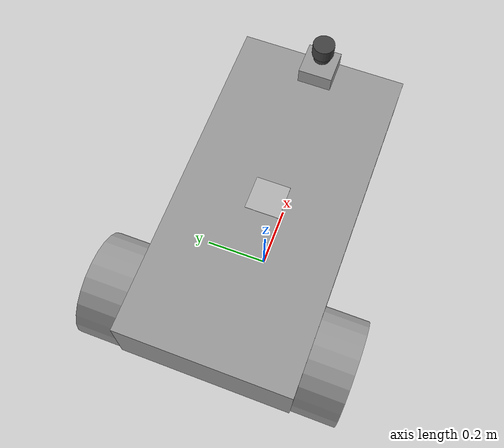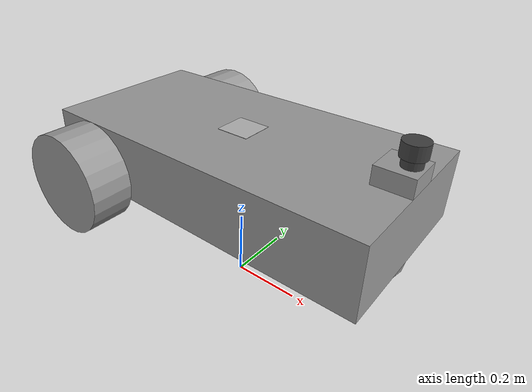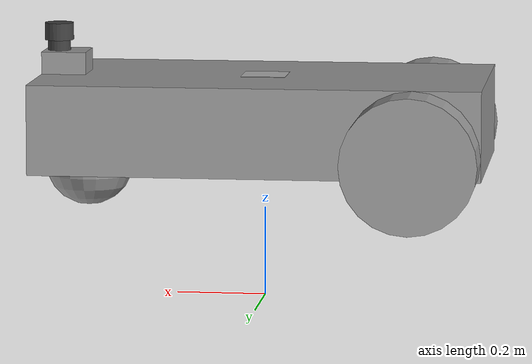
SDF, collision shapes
<?xml version='1.0'?>
<sdf version='1.7'>
  <model name='diff_drive_vehicle'>
    <link name='base_link'>
      <inertial>
        <mass>5</mass>
        <inertia>
          <ixx>0.120833</ixx>
          <ixy>0</ixy>
          <ixz>0</ixz>
          <iyy>0.433333</iyy>
          <iyz>0</iyz>
          <izz>0.520833</izz>
        </inertia>
        <pose>0 0 0 0 -0 0</pose>
      </inertial>
      <self_collide>0</self_collide>
      <enable_wind>0</enable_wind>
      <kinematic>0</kinematic>
      <pose>0 0 0.4 0 -0 0</pose>
      <gravity>1</gravity>
      <visual name='visual'>
        <geometry>
          <box>
            <size>1 0.5 0.2</size>
          </box>
        </geometry>
        <material>
          <script>
            <uri>file://media/materials/scripts/gazebo.material</uri>
            <name>Gazebo/Grey</name>
          </script>
          <shader type='pixel'>
            <normal_map>__default__</normal_map>
          </shader>
          <ambient>0.3 0.3 0.3 1</ambient>
          <diffuse>0.7 0.7 0.7 1</diffuse>
          <specular>0.01 0.01 0.01 1</specular>
          <emissive>0 0 0 1</emissive>
        </material>
        <pose>0 0 0 0 -0 0</pose>
        <transparency>0</transparency>
        <cast_shadows>1</cast_shadows>
      </visual>
      <collision name='collision'>
        <laser_retro>0</laser_retro>
        <max_contacts>10</max_contacts>
        <pose>0 0 0 0 -0 0</pose>
        <geometry>
          <box>
            <size>1 0.5 0.2</size>
          </box>
        </geometry>
        <surface>
          <friction>
            <ode>
              <mu>1</mu>
              <mu2>1</mu2>
              <fdir1>0 0 0</fdir1>
              <slip1>0</slip1>
              <slip2>0</slip2>
            </ode>
            <torsional>
              <coefficient>1</coefficient>
              <patch_radius>0</patch_radius>
              <surface_radius>0</surface_radius>
              <use_patch_radius>1</use_patch_radius>
              <ode>
                <slip>0</slip>
              </ode>
            </torsional>
          </friction>
          <bounce>
            <restitution_coefficient>0</restitution_coefficient>
            <threshold>1e+06</threshold>
          </bounce>
          <contact>
            <collide_without_contact>0</collide_without_contact>
            <collide_without_contact_bitmask>1</collide_without_contact_bitmask>
            <collide_bitmask>1</collide_bitmask>
            <ode>
              <soft_cfm>0</soft_cfm>
              <soft_erp>0.2</soft_erp>
              <kp>1e+13</kp>
              <kd>1</kd>
              <max_vel>0.01</max_vel>
              <min_depth>0</min_depth>
            </ode>
            <bullet>
              <split_impulse>1</split_impulse>
              <split_impulse_penetration_threshold>-0.01</split_impulse_penetration_threshold>
              <soft_cfm>0</soft_cfm>
              <soft_erp>0.2</soft_erp>
              <kp>1e+13</kp>
              <kd>1</kd>
            </bullet>
          </contact>
        </surface>
      </collision>
    </link>
    <link name='castor_wheel'>
      <inertial>
        <mass>0.1</mass>
        <inertia>
          <ixx>0.0004</ixx>
          <ixy>0.0004</ixy>
          <ixz>0.0004</ixz>
          <iyy>0.0004</iyy>
          <iyz>0.0004</iyz>
          <izz>0.0004</izz>
        </inertia>
        <pose>0 0 0 0 -0 0</pose>
      </inertial>
      <pose>0.4 0 0.3 0 -0 0</pose>
      <gravity>1</gravity>
      <self_collide>0</self_collide>
      <kinematic>0</kinematic>
      <enable_wind>0</enable_wind>
      <visual name='visual'>
        <pose>0 0 0 0 -0 0</pose>
        <geometry>
          <sphere>
            <radius>0.1</radius>
          </sphere>
        </geometry>
        <material>
          <lighting>1</lighting>
          <script>
            <uri>file://media/materials/scripts/gazebo.material</uri>
            <name>Gazebo/Grey</name>
          </script>
          <shader type='pixel'>
            <normal_map>__default__</normal_map>
          </shader>
          <ambient>0.3 0.3 0.3 1</ambient>
          <diffuse>0.7 0.7 0.7 1</diffuse>
          <specular>0.01 0.01 0.01 1</specular>
          <emissive>0 0 0 1</emissive>
        </material>
        <transparency>0</transparency>
        <cast_shadows>1</cast_shadows>
      </visual>
      <collision name='collision'>
        <laser_retro>0</laser_retro>
        <max_contacts>10</max_contacts>
        <pose>0 0 0 0 -0 0</pose>
        <geometry>
          <sphere>
            <radius>0.1</radius>
          </sphere>
        </geometry>
        <surface>
          <friction>
            <ode>
              <mu>1</mu>
              <mu2>1</mu2>
              <fdir1>0 0 0</fdir1>
              <slip1>0</slip1>
              <slip2>0</slip2>
            </ode>
            <torsional>
              <coefficient>1</coefficient>
              <patch_radius>0</patch_radius>
              <surface_radius>0</surface_radius>
              <use_patch_radius>1</use_patch_radius>
              <ode>
                <slip>0</slip>
              </ode>
            </torsional>
          </friction>
          <bounce>
            <restitution_coefficient>0</restitution_coefficient>
            <threshold>1e+06</threshold>
          </bounce>
          <contact>
            <collide_without_contact>0</collide_without_contact>
            <collide_without_contact_bitmask>1</collide_without_contact_bitmask>
            <collide_bitmask>1</collide_bitmask>
            <ode>
              <soft_cfm>0</soft_cfm>
              <soft_erp>0.2</soft_erp>
              <kp>1e+13</kp>
              <kd>1</kd>
              <max_vel>0.01</max_vel>
              <min_depth>0</min_depth>
            </ode>
            <bullet>
              <split_impulse>1</split_impulse>
              <split_impulse_penetration_threshold>-0.01</split_impulse_penetration_threshold>
              <soft_cfm>0</soft_cfm>
              <soft_erp>0.2</soft_erp>
              <kp>1e+13</kp>
              <kd>1</kd>
            </bullet>
          </contact>
        </surface>
      </collision>
    </link>
    <link name='left_wheel'>
      <inertial>
        <mass>0.25</mass>
        <inertia>
          <ixx>0.0017318</ixx>
          <ixy>0</ixy>
          <ixz>0</ixz>
          <iyy>0.0017318</iyy>
          <iyz>0</iyz>
          <izz>0.0028125</izz>
        </inertia>
        <pose>0 0 0 0 -0 0</pose>
      </inertial>
      <pose>-0.35 0.312514 0.349999 -1.5707 0 0</pose>
      <gravity>1</gravity>
      <self_collide>0</self_collide>
      <kinematic>0</kinematic>
      <enable_wind>0</enable_wind>
      <visual name='visual'>
        <pose>0 0 0 0 -0 0</pose>
        <geometry>
          <cylinder>
            <radius>0.15</radius>
            <length>0.125</length>
          </cylinder>
        </geometry>
        <material>
          <lighting>1</lighting>
          <script>
            <uri>file://media/materials/scripts/gazebo.material</uri>
            <name>Gazebo/Grey</name>
          </script>
          <shader type='pixel'>
            <normal_map>__default__</normal_map>
          </shader>
          <ambient>0.3 0.3 0.3 1</ambient>
          <diffuse>0.7 0.7 0.7 1</diffuse>
          <specular>0.01 0.01 0.01 1</specular>
          <emissive>0 0 0 1</emissive>
        </material>
        <transparency>0</transparency>
        <cast_shadows>1</cast_shadows>
      </visual>
      <collision name='collision'>
        <laser_retro>0</laser_retro>
        <max_contacts>10</max_contacts>
        <pose>0 0 0 0 -0 0</pose>
        <geometry>
          <cylinder>
            <radius>0.15</radius>
            <length>0.125</length>
          </cylinder>
        </geometry>
        <surface>
          <friction>
            <ode>
              <mu>200</mu>
              <mu2>100</mu2>
              <fdir1>0 0 0</fdir1>
              <slip1>0</slip1>
              <slip2>0</slip2>
            </ode>
            <torsional>
              <coefficient>1</coefficient>
              <patch_radius>0</patch_radius>
              <surface_radius>0</surface_radius>
              <use_patch_radius>1</use_patch_radius>
              <ode>
                <slip>0</slip>
              </ode>
            </torsional>
          </friction>
          <bounce>
            <restitution_coefficient>0</restitution_coefficient>
            <threshold>1e+06</threshold>
          </bounce>
          <contact>
            <collide_without_contact>0</collide_without_contact>
            <collide_without_contact_bitmask>1</collide_without_contact_bitmask>
            <collide_bitmask>1</collide_bitmask>
            <ode>
              <soft_cfm>0</soft_cfm>
              <soft_erp>0.2</soft_erp>
              <kp>1e+13</kp>
              <kd>1</kd>
              <max_vel>0.01</max_vel>
              <min_depth>0</min_depth>
            </ode>
            <bullet>
              <split_impulse>1</split_impulse>
              <split_impulse_penetration_threshold>-0.01</split_impulse_penetration_threshold>
              <soft_cfm>0</soft_cfm>
              <soft_erp>0.2</soft_erp>
              <kp>1e+13</kp>
              <kd>1</kd>
            </bullet>
          </contact>
        </surface>
      </collision>
    </link>
    <link name='link_0'>
      <inertial>
        <mass>0.1</mass>
        <inertia>
          <ixx>0.00010417</ixx>
          <ixy>0</ixy>
          <ixz>0</ixz>
          <iyy>0.00010417</iyy>
          <iyz>0</iyz>
          <izz>0.00016667</izz>
        </inertia>
        <pose>0 0 0 0 -0 0</pose>
      </inertial>
      <pose>0.45 0 0.524878 -1e-06 1.2e-05 4e-06</pose>
      <gravity>1</gravity>
      <self_collide>0</self_collide>
      <kinematic>0</kinematic>
      <enable_wind>0</enable_wind>
      <visual name='visual'>
        <pose>0 0 0 0 -0 0</pose>
        <geometry>
          <box>
            <size>0.1 0.1 0.05</size>
          </box>
        </geometry>
        <material>
          <lighting>1</lighting>
          <script>
            <uri>file://media/materials/scripts/gazebo.material</uri>
            <name>Gazebo/Grey</name>
          </script>
          <shader type='pixel'>
            <normal_map>__default__</normal_map>
          </shader>
          <ambient>0.3 0.3 0.3 1</ambient>
          <diffuse>0.7 0.7 0.7 1</diffuse>
          <specular>0.01 0.01 0.01 1</specular>
          <emissive>0 0 0 1</emissive>
        </material>
        <transparency>0</transparency>
        <cast_shadows>1</cast_shadows>
      </visual>
      <collision name='collision'>
        <laser_retro>0</laser_retro>
        <max_contacts>10</max_contacts>
        <pose>0 0 0 0 -0 0</pose>
        <geometry>
          <box>
            <size>0.1 0.1 0.05</size>
          </box>
        </geometry>
        <surface>
          <friction>
            <ode>
              <mu>1</mu>
              <mu2>1</mu2>
              <fdir1>0 0 0</fdir1>
              <slip1>0</slip1>
              <slip2>0</slip2>
            </ode>
            <torsional>
              <coefficient>1</coefficient>
              <patch_radius>0</patch_radius>
              <surface_radius>0</surface_radius>
              <use_patch_radius>1</use_patch_radius>
              <ode>
                <slip>0</slip>
              </ode>
            </torsional>
          </friction>
          <bounce>
            <restitution_coefficient>0</restitution_coefficient>
            <threshold>1e+06</threshold>
          </bounce>
          <contact>
            <collide_without_contact>0</collide_without_contact>
            <collide_without_contact_bitmask>1</collide_without_contact_bitmask>
            <collide_bitmask>1</collide_bitmask>
            <ode>
              <soft_cfm>0</soft_cfm>
              <soft_erp>0.2</soft_erp>
              <kp>1e+13</kp>
              <kd>1</kd>
              <max_vel>0.01</max_vel>
              <min_depth>0</min_depth>
            </ode>
            <bullet>
              <split_impulse>1</split_impulse>
              <split_impulse_penetration_threshold>-0.01</split_impulse_penetration_threshold>
              <soft_cfm>0</soft_cfm>
              <soft_erp>0.2</soft_erp>
              <kp>1e+13</kp>
              <kd>1</kd>
            </bullet>
          </contact>
        </surface>
      </collision>
    </link>
    <link name='marker_link'>
      <inertial>
        <mass>0.01</mass>
        <inertia>
          <ixx>8.42e-06</ixx>
          <ixy>0</ixy>
          <ixz>0</ixz>
          <iyy>8.42e-06</iyy>
          <iyz>0</iyz>
          <izz>1.667e-05</izz>
        </inertia>
        <pose>0 0 0 0 -0 0</pose>
      </inertial>
      <pose>0 -0 0.500875 0 -0 2e-06</pose>
      <gravity>1</gravity>
      <self_collide>0</self_collide>
      <kinematic>0</kinematic>
      <enable_wind>0</enable_wind>
      <visual name='visual'>
        <pose>0 0 0 0 -0 0</pose>
        <geometry>
          <box>
            <size>0.1 0.1 0.001</size>
          </box>
        </geometry>
        <material>
          <lighting>1</lighting>
          <script>
            <uri>model://diff_drive_vehicle/materials/scripts</uri>
            <uri>model://diff_drive_vehicle/materials/textures</uri>
            <name>Marker</name>
          </script>
          <shader type='pixel'>
            <normal_map>__default__</normal_map>
          </shader>
          <ambient>0.3 0.3 0.3 1</ambient>
          <diffuse>0.7 0.7 0.7 1</diffuse>
          <specular>0.01 0.01 0.01 1</specular>
          <emissive>0 0 0 1</emissive>
        </material>
        <transparency>0</transparency>
        <cast_shadows>1</cast_shadows>
      </visual>
      <collision name='collision'>
        <laser_retro>0</laser_retro>
        <max_contacts>10</max_contacts>
        <pose>0 0 0 0 -0 0</pose>
        <geometry>
          <box>
            <size>0.1 0.1 0.001</size>
          </box>
        </geometry>
        <surface>
          <friction>
            <ode>
              <mu>1</mu>
              <mu2>1</mu2>
              <fdir1>0 0 0</fdir1>
              <slip1>0</slip1>
              <slip2>0</slip2>
            </ode>
            <torsional>
              <coefficient>1</coefficient>
              <patch_radius>0</patch_radius>
              <surface_radius>0</surface_radius>
              <use_patch_radius>1</use_patch_radius>
              <ode>
                <slip>0</slip>
              </ode>
            </torsional>
          </friction>
          <bounce>
            <restitution_coefficient>0</restitution_coefficient>
            <threshold>1e+06</threshold>
          </bounce>
          <contact>
            <collide_without_contact>0</collide_without_contact>
            <collide_without_contact_bitmask>1</collide_without_contact_bitmask>
            <collide_bitmask>1</collide_bitmask>
            <ode>
              <soft_cfm>0</soft_cfm>
              <soft_erp>0.2</soft_erp>
              <kp>1e+13</kp>
              <kd>1</kd>
              <max_vel>0.01</max_vel>
              <min_depth>0</min_depth>
            </ode>
            <bullet>
              <split_impulse>1</split_impulse>
              <split_impulse_penetration_threshold>-0.01</split_impulse_penetration_threshold>
              <soft_cfm>0</soft_cfm>
              <soft_erp>0.2</soft_erp>
              <kp>1e+13</kp>
              <kd>1</kd>
            </bullet>
          </contact>
        </surface>
      </collision>
    </link>
    <link name='right_wheel'>
      <inertial>
        <mass>0.25</mass>
        <inertia>
          <ixx>0.0017318</ixx>
          <ixy>0</ixy>
          <ixz>0</ixz>
          <iyy>0.0017318</iyy>
          <iyz>0</iyz>
          <izz>0.0028125</izz>
        </inertia>
        <pose>0 0 0 0 -0 0</pose>
      </inertial>
      <pose>-0.35 -0.312516 0.350001 -1.57069 0 0</pose>
      <gravity>1</gravity>
      <self_collide>0</self_collide>
      <kinematic>0</kinematic>
      <enable_wind>0</enable_wind>
      <visual name='visual'>
        <pose>0 0 0 0 -0 0</pose>
        <geometry>
          <cylinder>
            <radius>0.15</radius>
            <length>0.125</length>
          </cylinder>
        </geometry>
        <material>
          <lighting>1</lighting>
          <script>
            <uri>file://media/materials/scripts/gazebo.material</uri>
            <name>Gazebo/Grey</name>
          </script>
          <shader type='pixel'>
            <normal_map>__default__</normal_map>
          </shader>
          <ambient>0.3 0.3 0.3 1</ambient>
          <diffuse>0.7 0.7 0.7 1</diffuse>
          <specular>0.01 0.01 0.01 1</specular>
          <emissive>0 0 0 1</emissive>
        </material>
        <transparency>0</transparency>
        <cast_shadows>1</cast_shadows>
      </visual>
      <collision name='collision'>
        <laser_retro>0</laser_retro>
        <max_contacts>10</max_contacts>
        <pose>0 0 0 0 -0 0</pose>
        <geometry>
          <cylinder>
            <radius>0.15</radius>
            <length>0.125</length>
          </cylinder>
        </geometry>
        <surface>
          <friction>
            <ode>
              <mu>200</mu>
              <mu2>100</mu2>
              <fdir1>0 0 0</fdir1>
              <slip1>0</slip1>
              <slip2>0</slip2>
            </ode>
            <torsional>
              <coefficient>1</coefficient>
              <patch_radius>0</patch_radius>
              <surface_radius>0</surface_radius>
              <use_patch_radius>1</use_patch_radius>
              <ode>
                <slip>0</slip>
              </ode>
            </torsional>
          </friction>
          <bounce>
            <restitution_coefficient>0</restitution_coefficient>
            <threshold>1e+06</threshold>
          </bounce>
          <contact>
            <collide_without_contact>0</collide_without_contact>
            <collide_without_contact_bitmask>1</collide_without_contact_bitmask>
            <collide_bitmask>1</collide_bitmask>
            <ode>
              <soft_cfm>0</soft_cfm>
              <soft_erp>0.2</soft_erp>
              <kp>1e+13</kp>
              <kd>1</kd>
              <max_vel>0.01</max_vel>
              <min_depth>0</min_depth>
            </ode>
            <bullet>
              <split_impulse>1</split_impulse>
              <split_impulse_penetration_threshold>-0.01</split_impulse_penetration_threshold>
              <soft_cfm>0</soft_cfm>
              <soft_erp>0.2</soft_erp>
              <kp>1e+13</kp>
              <kd>1</kd>
            </bullet>
          </contact>
        </surface>
      </collision>
    </link>
    <model name='scanse_sweep'>
      <link name='base'>
        <pose>0 0 0.0117 0 -0 0</pose>
        <inertial>
          <mass>0.11</mass>
          <inertia>
            <ixx>2.2901e-05</ixx>
            <iyy>2.2901e-05</iyy>
            <izz>3.5764e-05</izz>
            <ixy>0</ixy>
            <ixz>0</ixz>
            <iyz>0</iyz>
          </inertia>
          <pose>0 0 0 0 -0 0</pose>
        </inertial>
        <collision name='base_collision'>
          <geometry>
            <cylinder>
              <radius>0.0255</radius>
              <length>0.0234</length>
            </cylinder>
          </geometry>
          <max_contacts>10</max_contacts>
          <surface>
            <contact>
              <ode/>
            </contact>
            <bounce/>
            <friction>
              <torsional>
                <ode/>
              </torsional>
              <ode/>
            </friction>
          </surface>
        </collision>
        <visual name='base_visual'>
          <geometry>
            <mesh>
              <uri>model://scanse_sweep/meshes/scanse_bottom.dae</uri>
            </mesh>
          </geometry>
          <material>
            <ambient>0.25 0.25 0.25 1</ambient>
            <diffuse>0.25 0.25 0.25 1</diffuse>
            <specular>0 0 0 0</specular>
            <emissive>0 0 0 0</emissive>
          </material>
        </visual>
        <self_collide>0</self_collide>
        <enable_wind>0</enable_wind>
        <kinematic>0</kinematic>
      </link>
      <link name='top'>
        <pose>0 0 0.04265 0 -0 0</pose>
        <inertial>
          <mass>0.01</mass>
          <inertia>
            <ixx>3.876e-06</ixx>
            <iyy>3.876e-06</iyy>
            <izz>5.281e-06</izz>
            <ixy>0</ixy>
            <ixz>0</ixz>
            <iyz>0</iyz>
          </inertia>
          <pose>0 0 0 0 -0 0</pose>
        </inertial>
        <collision name='top_collision'>
          <geometry>
            <cylinder>
              <radius>0.0325</radius>
              <length>0.0385</length>
            </cylinder>
          </geometry>
          <max_contacts>10</max_contacts>
          <surface>
            <contact>
              <ode/>
            </contact>
            <bounce/>
            <friction>
              <torsional>
                <ode/>
              </torsional>
              <ode/>
            </friction>
          </surface>
        </collision>
        <visual name='top_visual'>
          <geometry>
            <mesh>
              <uri>model://scanse_sweep/meshes/scanse_top.dae</uri>
            </mesh>
          </geometry>
          <material>
            <ambient>0.25 0.25 0.25 1</ambient>
            <diffuse>0.25 0.25 0.25 1</diffuse>
            <specular>0 0 0 0</specular>
            <emissive>0 0 0 0</emissive>
          </material>
        </visual>
        <sensor name='sensor' type='gpu_lidar'>
          <pose>0 0 -0.00105 0 -0 0</pose>
          <visualize>0</visualize>
          <update_rate>500</update_rate>
          <ray>
            <noise>
              <type>gaussian</type>
              <mean>0</mean>
              <stddev>0.001</stddev>
            </noise>
            <scan>
              <horizontal>
                <samples>1000</samples>
                <resolution>1</resolution>
                <min_angle>0</min_angle>
                <max_angle>6.28</max_angle>
              </horizontal>
              <vertical>
                <samples>2</samples>
                <resolution>1</resolution>
                <min_angle>-0.00436</min_angle>
                <max_angle>0.00436</max_angle>
              </vertical>
            </scan>
            <range>
              <min>0.05</min>
              <max>40</max>
              <resolution>0.01</resolution>
            </range>
          </ray>
          <plugin name='laser_scanner' filename='libgazebo_ros_gpu_laser.so'>
            <robotNamespace>scanse_sweep</robotNamespace>
            <topicName>/scan</topicName>
            <frameName>top</frameName>
          </plugin>
        </sensor>
        <self_collide>0</self_collide>
        <enable_wind>0</enable_wind>
        <kinematic>0</kinematic>
      </link>
      <pose>0.467123 0 0.549878 0 -0 0</pose>
    </model>
    <joint name='base_link_JOINT_0' type='fixed'>
      <parent>base_link</parent>
      <child>marker_link</child>
      <pose>0 0 0 0 -0 0</pose>
      <physics>
        <ode>
          <limit>
            <cfm>0</cfm>
            <erp>0.2</erp>
          </limit>
          <suspension>
            <cfm>0</cfm>
            <erp>0.2</erp>
          </suspension>
        </ode>
      </physics>
    </joint>
    <joint name='base_top_scanse_joint' type='fixed'>
      <parent>scanse_sweep::base</parent>
      <child>scanse_sweep::top</child>
      <pose>0 0 -0.01925 0 -0 0</pose>
      <physics>
        <ode>
          <limit>
            <cfm>0</cfm>
            <erp>0.2</erp>
          </limit>
          <suspension>
            <cfm>0</cfm>
            <erp>0.2</erp>
          </suspension>
        </ode>
      </physics>
    </joint>
    <joint name='castor_joint' type='ball'>
      <parent>base_link</parent>
      <child>castor_wheel</child>
      <pose>0 0 0 0 -0 0</pose>
      <physics>
        <ode>
          <limit>
            <cfm>0</cfm>
            <erp>0.2</erp>
          </limit>
          <suspension>
            <cfm>0</cfm>
            <erp>0.2</erp>
          </suspension>
        </ode>
      </physics>
    </joint>
    <joint name='left_joint' type='revolute'>
      <parent>base_link</parent>
      <child>left_wheel</child>
      <pose>0 0 0 0 -0 0</pose>
      <axis>
        <xyz>0 0 1</xyz>
        <limit>
          <lower>-1.79769e+308</lower>
          <upper>1.79769e+308</upper>
          <effort>-1</effort>
          <velocity>-1</velocity>
        </limit>
        <dynamics>
          <spring_reference>0</spring_reference>
          <spring_stiffness>0</spring_stiffness>
          <damping>0</damping>
          <friction>0.1</friction>
        </dynamics>
      </axis>
      <physics>
        <ode>
          <limit>
            <cfm>0</cfm>
            <erp>0.2</erp>
          </limit>
          <suspension>
            <cfm>0</cfm>
            <erp>0.2</erp>
          </suspension>
        </ode>
      </physics>
    </joint>
    <joint name='lidarmount_baselink_joint' type='fixed'>
      <parent>base_link</parent>
      <child>link_0</child>
      <pose>0 0 0 0 -0 0</pose>
      <physics>
        <ode>
          <limit>
            <cfm>0</cfm>
            <erp>0.2</erp>
          </limit>
          <suspension>
            <cfm>0</cfm>
            <erp>0.2</erp>
          </suspension>
        </ode>
      </physics>
    </joint>
    <joint name='lidarmount_lidar_joint' type='fixed'>
      <parent>link_0</parent>
      <child>scanse_sweep::base</child>
      <pose>0 0 0 0 -0 0</pose>
      <physics>
        <ode>
          <limit>
            <cfm>0</cfm>
            <erp>0.2</erp>
          </limit>
          <suspension>
            <cfm>0</cfm>
            <erp>0.2</erp>
          </suspension>
        </ode>
      </physics>
    </joint>
    <joint name='right_joint' type='revolute'>
      <parent>base_link</parent>
      <child>right_wheel</child>
      <pose>0 0 0 0 -0 0</pose>
      <axis>
        <xyz>0 0 1</xyz>
        <limit>
          <lower>-1.79769e+308</lower>
          <upper>1.79769e+308</upper>
          <effort>-1</effort>
          <velocity>-1</velocity>
        </limit>
        <dynamics>
          <spring_reference>0</spring_reference>
          <spring_stiffness>0</spring_stiffness>
          <damping>0</damping>
          <friction>0.1</friction>
        </dynamics>
      </axis>
      <physics>
        <ode>
          <limit>
            <cfm>0</cfm>
            <erp>0.2</erp>
          </limit>
          <suspension>
            <cfm>0</cfm>
            <erp>0.2</erp>
          </suspension>
        </ode>
      </physics>
    </joint>
    <static>0</static>
    <allow_auto_disable>1</allow_auto_disable>
    <plugin name='diff_drive' filename='libgazebo_ros_diff_drive.so'>
      <robotNamespace>diff_drive_vehicle</robotNamespace>
      <commandTopic>/cmd_vel</commandTopic>
      <odometryTopic>/odom</odometryTopic>
      <odometryFrame>odom</odometryFrame>
      <robotBaseFrame>base_link</robotBaseFrame>
      <publishWheelTF>0</publishWheelTF>
      <publishOdomTF>1</publishOdomTF>
      <publishWheelJointState>0</publishWheelJointState>
      <wheelSeparation>0.625</wheelSeparation>
      <wheelDiameter>0.6</wheelDiameter>
      <wheelAcceleration>0</wheelAcceleration>
      <wheelTorque>5</wheelTorque>
      <updateRate>100</updateRate>
      <leftJoint>left_joint</leftJoint>
      <rightJoint>right_joint</rightJoint>
      <rosDebugLevel>na</rosDebugLevel>
      <odometrySource>world</odometrySource>
      <publishTf>1</publishTf>
    </plugin>
  </model>
</sdf>
